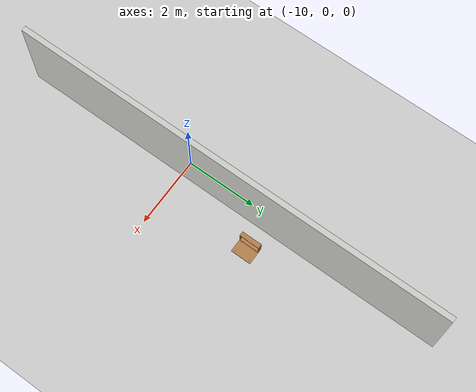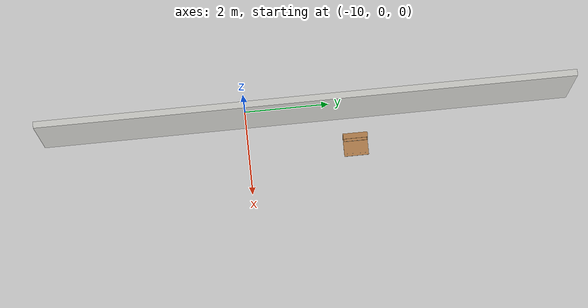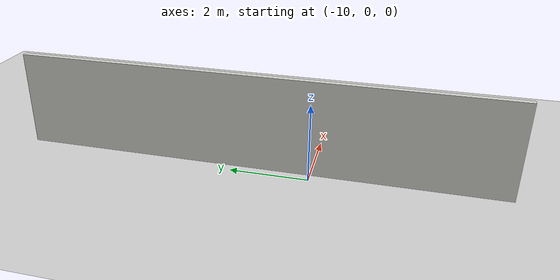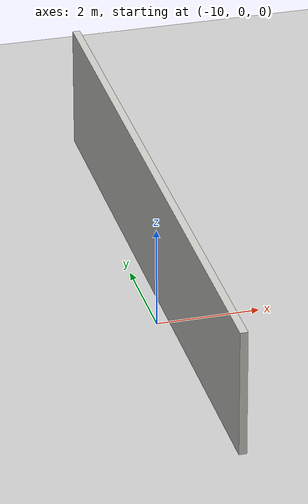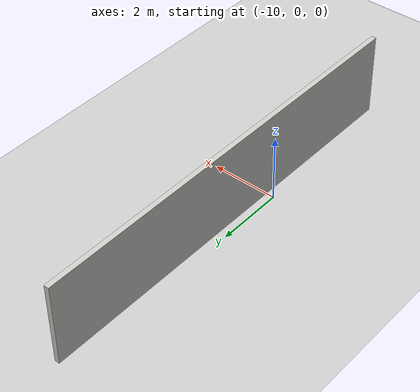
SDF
<sdf version="1.6">
 <world name="default">
  <model name="ground_plane">
   <static>1</static>
   <link name="link">
    <collision name="collision">
     <geometry><plane><normal>0 0 1</normal><size>100 100</size></plane></geometry>
     <surface><friction><ode><mu>100</mu><mu2>50</mu2></ode></friction></surface>
    </collision>
    <visual name="visual">
     <cast_shadows>0</cast_shadows>
     <geometry><plane><normal>0 0 1</normal><size>100 100</size></plane></geometry>
     <material>
      <script><uri>file://media/materials/scripts/gazebo.material</uri><name>Gazebo/Grey</name></script>
     </material>
    </visual>
   </link>
  </model>
  <model name="building">
   <link name="Wall_39">
    <pose>-5.85 2.92477 0 0 -0 1.5708</pose>
    <inertial>
     <mass>1</mass>
     <inertia><ixx>1</ixx><ixy>0</ixy><ixz>0</ixz><iyy>1</iyy><iyz>0</iyz><izz>1</izz></inertia>
    </inertial>
    <visual name="Wall_39_Visual">
     <pose>0 0 1.25 0 -0 0</pose>
     <geometry><box><size>12.5009 0.15 2.5</size></box></geometry>
     <material>
      <script><uri>file://media/materials/scripts/gazebo.material</uri><name>Gazebo/CeilingTiled</name></script>
      <ambient>0.6 0.1 0.7 1</ambient>
      <shader type="pixel"><normal_map>__default__</normal_map></shader>
      <diffuse>1 1 1 1</diffuse>
      <specular>0 0 0 1</specular>
      <emissive>0 0 0 1</emissive>
     </material>
     <meta><layer>0</layer></meta>
    </visual>
    <collision name="Wall_39_Collision">
     <pose>0 0 1.25 0 -0 0</pose>
     <geometry><box><size>12.5009 0.15 2.5</size></box></geometry>
     <surface>
      <friction>
       <ode><mu>1</mu><mu2>1</mu2><fdir1>0 0 0</fdir1><slip1>0</slip1><slip2>0</slip2></ode>
       <torsional>
        <coefficient>1</coefficient>
        <patch_radius>0</patch_radius>
        <surface_radius>0</surface_radius>
        <use_patch_radius>1</use_patch_radius>
        <ode><slip>0</slip></ode>
       </torsional>
      </friction>
      <bounce><restitution_coefficient>0</restitution_coefficient><threshold>1e+06</threshold></bounce>
      <contact>
       <collide_without_contact>0</collide_without_contact>
       <collide_without_contact_bitmask>1</collide_without_contact_bitmask>
       <collide_bitmask>1</collide_bitmask>
       <ode>
        <soft_cfm>0</soft_cfm>
        <soft_erp>0.2</soft_erp>
        <kp>1e+13</kp>
        <kd>1</kd>
        <max_vel>0.01</max_vel>
        <min_depth>0</min_depth>
       </ode>
       <bullet>
        <split_impulse>1</split_impulse>
        <split_impulse_penetration_threshold>-0.01</split_impulse_penetration_threshold>
        <soft_cfm>0</soft_cfm>
        <soft_erp>0.2</soft_erp>
        <kp>1e+13</kp>
        <kd>1</kd>
       </bullet>
      </contact>
     </surface>
    </collision>
   </link>
   <static>1</static>
   <pose>-3.83214 -1.50097 0 0 -0 0</pose>
  </model>
  <model name="wooden_case">
   <link name="base">
    <pose>0 0 0.024 0 -0 0</pose>
    <inertial>
     <pose>-0.022184 0 0.171592 0 -0 0</pose>
     <mass>3.96264</mass>
     <inertia>
      <ixx>0.213536</ixx>
      <ixy>0</ixy>
      <ixz>0.000779377</ixz>
      <iyy>0.0708943</iyy>
      <iyz>0</iyz>
      <izz>0.154604</izz>
     </inertia>
    </inertial>
    <collision name="collision_back">
     <pose>-0.053975 0 0.1778 0 -0 0</pose>
     <geometry><box><size>0.01905 0.5461 0.3175</size></box></geometry>
     <surface>
      <contact>
       <poissons_ratio>0.347</poissons_ratio>
       <elastic_modulus>8.8e+09</elastic_modulus>
       <ode><kp>100000</kp><kd>100</kd><max_vel>100</max_vel><min_depth>0.001</min_depth></ode>
      </contact>
      <friction>
       <torsional>
        <coefficient>1</coefficient>
        <use_patch_radius>0</use_patch_radius>
        <surface_radius>0.01</surface_radius>
       </torsional>
      </friction>
     </surface>
    </collision>
    <visual name="visual_back">
     <pose>-0.053975 0 0.1778 0 -0 0</pose>
     <geometry><box><size>0.01905 0.5461 0.3175</size></box></geometry>
     <material>
      <script><uri>file://media/materials/scripts/gazebo.material</uri><name>Gazebo/Wood</name></script>
     </material>
    </visual>
    <collision name="collision_bottom">
     <pose>0 0 0.009525 0 -0 0</pose>
     <geometry><box><size>0.127 0.5842 0.01905</size></box></geometry>
     <surface>
      <contact>
       <poissons_ratio>0.347</poissons_ratio>
       <elastic_modulus>8.8e+09</elastic_modulus>
       <ode><kp>100000</kp><kd>100</kd><max_vel>100</max_vel><min_depth>0.001</min_depth></ode>
      </contact>
      <friction>
       <torsional>
        <coefficient>1</coefficient>
        <use_patch_radius>0</use_patch_radius>
        <surface_radius>0.01</surface_radius>
       </torsional>
      </friction>
     </surface>
    </collision>
    <visual name="visual_bottom">
     <pose>0 0 0.009525 0 -0 0</pose>
     <geometry><box><size>0.127 0.5842 0.01905</size></box></geometry>
     <material>
      <script><uri>file://media/materials/scripts/gazebo.material</uri><name>Gazebo/Wood</name></script>
     </material>
    </visual>
    <collision name="collision_top">
     <pose>0 0 0.346075 0 -0 0</pose>
     <geometry><box><size>0.127 0.5842 0.01905</size></box></geometry>
     <surface>
      <contact>
       <poissons_ratio>0.347</poissons_ratio>
       <elastic_modulus>8.8e+09</elastic_modulus>
       <ode><kp>100000</kp><kd>100</kd><max_vel>100</max_vel><min_depth>0.001</min_depth></ode>
      </contact>
      <friction>
       <torsional>
        <coefficient>1</coefficient>
        <use_patch_radius>0</use_patch_radius>
        <surface_radius>0.01</surface_radius>
       </torsional>
      </friction>
     </surface>
    </collision>
    <visual name="visual_top">
     <pose>0 0 0.346075 0 -0 0</pose>
     <geometry><box><size>0.127 0.5842 0.01905</size></box></geometry>
     <material>
      <script><uri>file://media/materials/scripts/gazebo.material</uri><name>Gazebo/Wood</name></script>
     </material>
    </visual>
    <collision name="collision_left">
     <pose>0 -0.282575 0.1778 0 -0 0</pose>
     <geometry><box><size>0.127 0.01905 0.3175</size></box></geometry>
     <surface>
      <contact>
       <poissons_ratio>0.347</poissons_ratio>
       <elastic_modulus>8.8e+09</elastic_modulus>
       <ode><kp>100000</kp><kd>100</kd><max_vel>100</max_vel><min_depth>0.001</min_depth></ode>
      </contact>
      <friction>
       <torsional>
        <coefficient>1</coefficient>
        <use_patch_radius>0</use_patch_radius>
        <surface_radius>0.01</surface_radius>
       </torsional>
      </friction>
     </surface>
    </collision>
    <visual name="visual_left">
     <pose>0 -0.282575 0.1778 0 -0 0</pose>
     <geometry><box><size>0.127 0.01905 0.3175</size></box></geometry>
     <material>
      <script><uri>file://media/materials/scripts/gazebo.material</uri><name>Gazebo/Wood</name></script>
     </material>
    </visual>
    <collision name="collision_right">
     <pose>0 0.282575 0.1778 0 -0 0</pose>
     <geometry><box><size>0.127 0.01905 0.3175</size></box></geometry>
     <surface>
      <contact>
       <poissons_ratio>0.347</poissons_ratio>
       <elastic_modulus>8.8e+09</elastic_modulus>
       <ode><kp>100000</kp><kd>100</kd><max_vel>100</max_vel><min_depth>0.001</min_depth></ode>
      </contact>
      <friction>
       <torsional>
        <coefficient>1</coefficient>
        <use_patch_radius>0</use_patch_radius>
        <surface_radius>0.01</surface_radius>
       </torsional>
      </friction>
     </surface>
    </collision>
    <visual name="visual_right">
     <pose>0 0.282575 0.1778 0 -0 0</pose>
     <geometry><box><size>0.127 0.01905 0.3175</size></box></geometry>
     <material>
      <script><uri>file://media/materials/scripts/gazebo.material</uri><name>Gazebo/Wood</name></script>
     </material>
    </visual>
    <collision name="collision_block_left">
     <pose>0.0095 -0.2151 -0.012 0 -0 0</pose>
     <geometry><box><size>0.108 0.05 0.024</size></box></geometry>
     <surface>
      <contact>
       <poissons_ratio>0.347</poissons_ratio>
       <elastic_modulus>8.8e+09</elastic_modulus>
       <ode><kp>100000</kp><kd>100</kd><max_vel>100</max_vel><min_depth>0.001</min_depth></ode>
      </contact>
      <friction>
       <torsional>
        <coefficient>1</coefficient>
        <use_patch_radius>0</use_patch_radius>
        <surface_radius>0.01</surface_radius>
       </torsional>
      </friction>
     </surface>
    </collision>
    <visual name="visual_block_left">
     <pose>0.0095 -0.2151 -0.012 0 -0 0</pose>
     <geometry><box><size>0.108 0.05 0.024</size></box></geometry>
     <material>
      <script><uri>file://media/materials/scripts/gazebo.material</uri><name>Gazebo/Wood</name></script>
     </material>
    </visual>
    <collision name="collision_block_right">
     <pose>0.0095 0.2151 -0.012 0 -0 0</pose>
     <geometry><box><size>0.108 0.05 0.024</size></box></geometry>
     <surface>
      <contact>
       <poissons_ratio>0.347</poissons_ratio>
       <elastic_modulus>8.8e+09</elastic_modulus>
       <ode><kp>100000</kp><kd>100</kd><max_vel>100</max_vel><min_depth>0.001</min_depth></ode>
      </contact>
      <friction>
       <torsional>
        <coefficient>1</coefficient>
        <use_patch_radius>0</use_patch_radius>
        <surface_radius>0.01</surface_radius>
       </torsional>
      </friction>
     </surface>
    </collision>
    <visual name="visual_block_right">
     <pose>0.0095 0.2151 -0.012 0 -0 0</pose>
     <geometry><box><size>0.108 0.05 0.024</size></box></geometry>
     <material>
      <script><uri>file://media/materials/scripts/gazebo.material</uri><name>Gazebo/Wood</name></script>
     </material>
    </visual>
   </link>
   <link name="lid">
    <pose>0.243775 0 0.009525 0 -0 0</pose>
    <inertial>
     <mass>1.97874</mass>
     <inertia>
      <ixx>0.0563367</ixx>
      <ixy>0</ixy>
      <ixz>0</ixz>
      <iyy>0.020911</iyy>
      <iyz>0</iyz>
      <izz>0.0771281</izz>
     </inertia>
    </inertial>
    <collision name="collision">
     <geometry><box><size>0.3556 0.5842 0.01905</size></box></geometry>
     <surface>
      <contact>
       <poissons_ratio>0.347</poissons_ratio>
       <elastic_modulus>8.8e+09</elastic_modulus>
       <ode><kp>100000</kp><kd>100</kd><max_vel>100</max_vel><min_depth>0.001</min_depth></ode>
      </contact>
      <friction>
       <torsional>
        <coefficient>1</coefficient>
        <use_patch_radius>0</use_patch_radius>
        <surface_radius>0.01</surface_radius>
       </torsional>
      </friction>
     </surface>
    </collision>
    <visual name="visual">
     <geometry><box><size>0.3556 0.5842 0.01905</size></box></geometry>
     <material>
      <script><uri>file://media/materials/scripts/gazebo.material</uri><name>Gazebo/Wood</name></script>
     </material>
    </visual>
    <visual name="tee_nut_1">
     <pose>0.122 -0.216 0 0 -0 0</pose>
     <geometry><cylinder><radius>0.00635</radius><length>0.0192405</length></cylinder></geometry>
     <material>
      <script><uri>file://media/materials/scripts/gazebo.material</uri><name>Gazebo/Grey</name></script>
     </material>
    </visual>
    <visual name="tee_nut_2">
     <pose>0.122 -0.088 0 0 -0 0</pose>
     <geometry><cylinder><radius>0.00635</radius><length>0.0192405</length></cylinder></geometry>
     <material>
      <script><uri>file://media/materials/scripts/gazebo.material</uri><name>Gazebo/Grey</name></script>
     </material>
    </visual>
    <visual name="tee_nut_3">
     <pose>0.122 0.088 0 0 -0 0</pose>
     <geometry><cylinder><radius>0.00635</radius><length>0.0192405</length></cylinder></geometry>
     <material>
      <script><uri>file://media/materials/scripts/gazebo.material</uri><name>Gazebo/Grey</name></script>
     </material>
    </visual>
    <visual name="tee_nut_4">
     <pose>0.122 0.216 0 0 -0 0</pose>
     <geometry><cylinder><radius>0.00635</radius><length>0.0192405</length></cylinder></geometry>
     <material>
      <script><uri>file://media/materials/scripts/gazebo.material</uri><name>Gazebo/Grey</name></script>
     </material>
    </visual>
   </link>
   <joint name="lid_hinge" type="revolute">
    <pose>-0.1778 0 0.01905 0 -0 0</pose>
    <parent>base</parent>
    <child>lid</child>
    <axis>
     <xyz>0 1 0</xyz>
     <limit><upper>0.523599</upper><lower>-1.5708</lower></limit>
     <use_parent_model_frame>0</use_parent_model_frame>
     <dynamics><spring_reference>0</spring_reference><spring_stiffness>0</spring_stiffness></dynamics>
    </axis>
   </joint>
   <pose>-9.11258 2.5497 -0.001057 0 -0.000429 0</pose>
  </model>
 </world>
</sdf>
